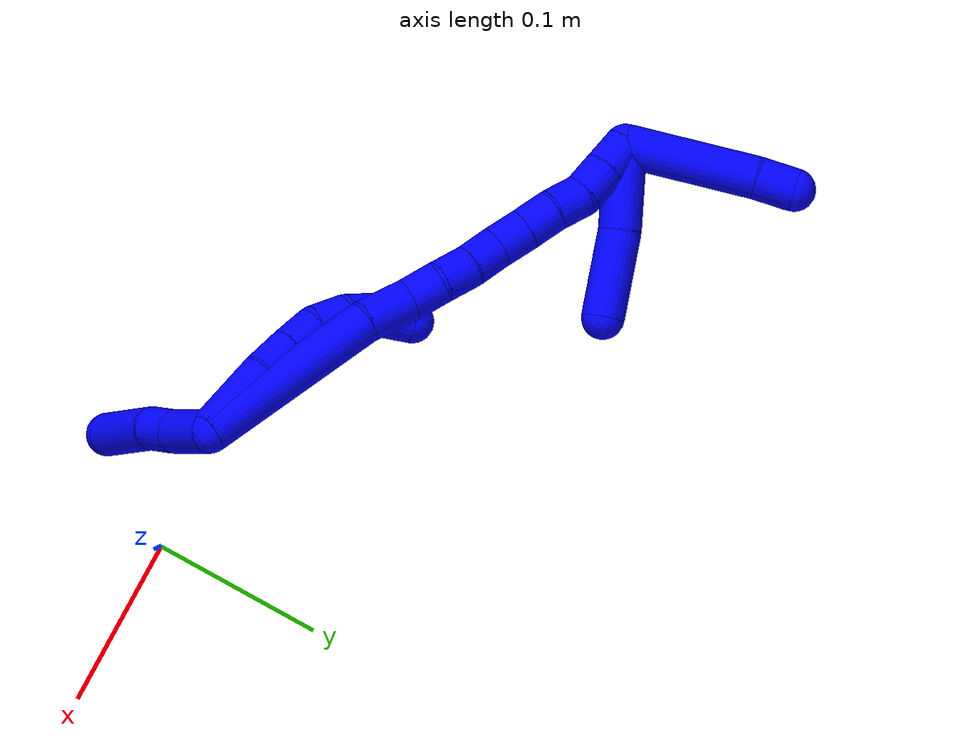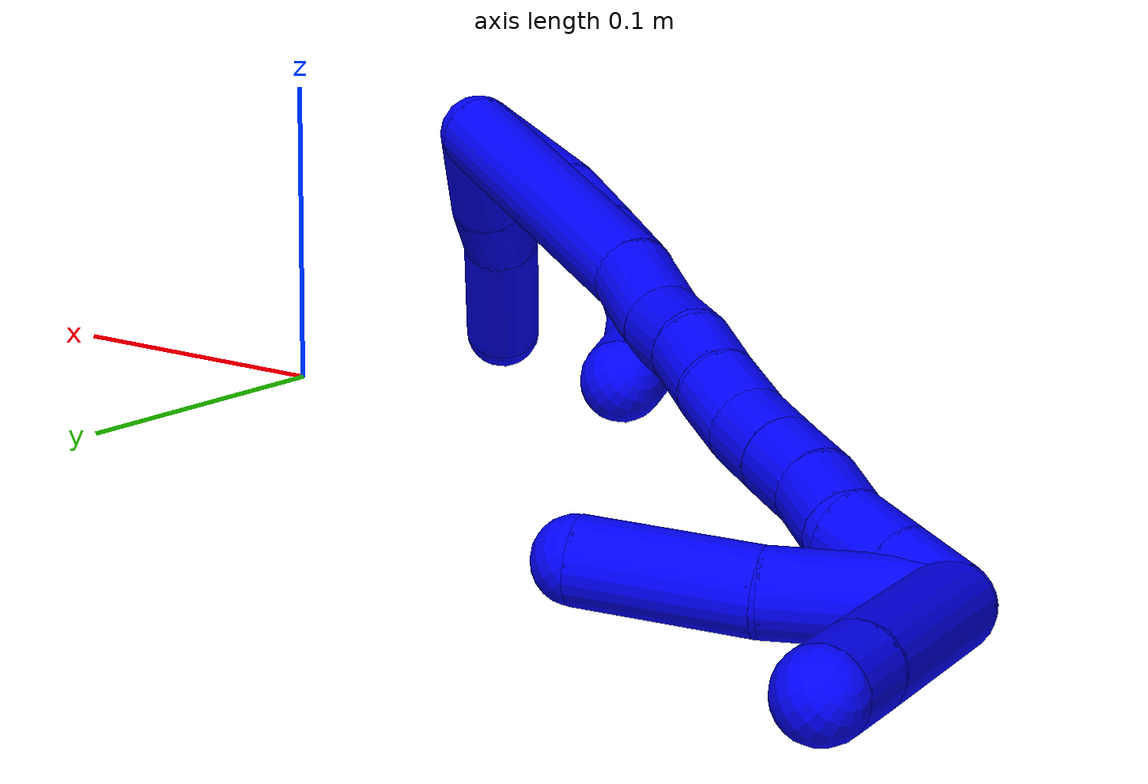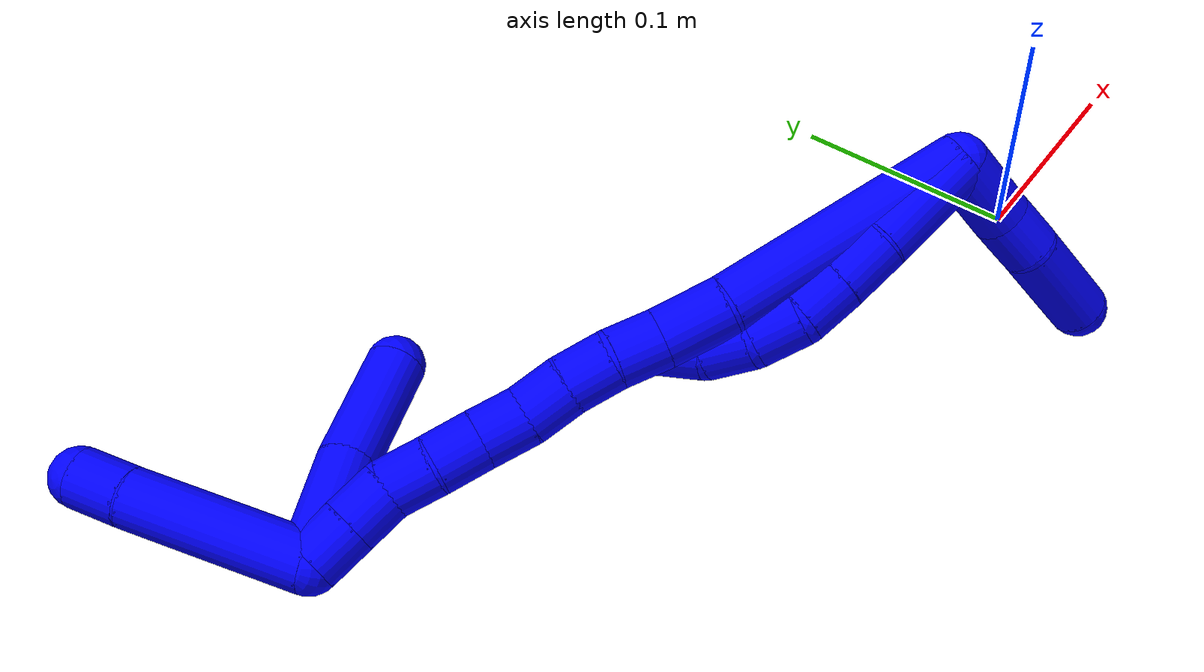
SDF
<sdf version="1.7">
 <world name="default">
  <model name="photoneo_s_sensor">
   <static>1</static>
   <pose>0 0 2 1.57079 1.57079 3.14159</pose>
   <link name="link">
    <inertial><mass>0.1</mass></inertial>
    <sensor name="sensor" type="depth">
     <update_rate>30</update_rate>
     <camera>
      <horizontal_fov>1.22</horizontal_fov>
      <image><width>1920</width><height>1200</height><format>B8G8R8</format></image>
      <clip><near>0.1</near><far>4</far></clip>
      <depth_camera><output>points</output></depth_camera>
     </camera>
     <plugin name="camera_plugin" filename="libgazebo_ros_depth_camera.so">
      <baseline>0.2</baseline>
      <alwaysOn>1</alwaysOn>
      <updateRate>0.0</updateRate>
      <cameraName>camera_ir</cameraName>
      <imageTopicName>/camera/color/image_raw</imageTopicName>
      <cameraInfoTopicName>/camera/color/camera_info</cameraInfoTopicName>
      <depthImageTopicName>/camera/depth/image_raw</depthImageTopicName>
      <depthImageCameraInfoTopicName>/camera/depth/camera_info</depthImageCameraInfoTopicName>
      <pointCloudTopicName>/camera/depth/points</pointCloudTopicName>
      <frameName>fr_optical</frameName>
      <pointCloudCutoff>0.1</pointCloudCutoff>
      <pointCloudCutoffMax>2.0</pointCloudCutoffMax>
      <distortionK1>0</distortionK1>
      <distortionK2>0</distortionK2>
      <distortionK3>0</distortionK3>
      <distortionT1>0</distortionT1>
      <distortionT2>0</distortionT2>
      <CxPrime>0</CxPrime>
      <Cx>0</Cx>
      <Cy>0</Cy>
      <focalLength>0</focalLength>
      <hackBaseline>0</hackBaseline>
     </plugin>
    </sensor>
   </link>
  </model>
  <model name="bin">
   <static>1</static>
   <link name="bottom">
    <collision name="collision-bottom">
     <pose>0 0 -0.01 0 -0 0</pose>
     <geometry><box><size>0.8 0.6 0.02</size></box></geometry>
     <surface>
      <friction><ode><mu>100</mu><mu2>100</mu2></ode></friction>
      <contact><collide_bitmask>65535</collide_bitmask></contact>
     </surface>
    </collision>
   </link>
   <link name="west_wall">
    <collision name="collision-west_wall">
     <pose>-0.41 0 0.1 0 -0 0</pose>
     <geometry><box><size>0.02 0.6 0.2</size></box></geometry>
     <surface>
      <friction><ode><mu>100</mu><mu2>100</mu2></ode></friction>
      <contact><collide_bitmask>65535</collide_bitmask></contact>
     </surface>
    </collision>
   </link>
   <link name="east_wall">
    <collision name="collision-east_wall">
     <pose>0.41 0 0.1 0 -0 0</pose>
     <geometry><box><size>0.02 0.6 0.2</size></box></geometry>
     <surface>
      <friction><ode><mu>100</mu><mu2>100</mu2></ode></friction>
      <contact><collide_bitmask>65535</collide_bitmask></contact>
     </surface>
    </collision>
   </link>
   <link name="south_wall">
    <collision name="collision-south_wall">
     <pose>0 -0.31 0.1 0 -0 0</pose>
     <geometry><box><size>0.8 0.02 0.2</size></box></geometry>
     <surface>
      <friction><ode><mu>100</mu><mu2>100</mu2></ode></friction>
      <contact><collide_bitmask>65535</collide_bitmask></contact>
     </surface>
    </collision>
   </link>
   <link name="north_wall">
    <collision name="collision-north_wall">
     <pose>0 0.31 0.1 0 -0 0</pose>
     <geometry><box><size>0.8 0.02 0.2</size></box></geometry>
     <surface>
      <friction><ode><mu>100</mu><mu2>100</mu2></ode></friction>
      <contact><collide_bitmask>65535</collide_bitmask></contact>
     </surface>
    </collision>
   </link>
  </model>
  <model name="1">
   <static>0</static>
   <link name="1">
    <collision name="collision-cylinder-e_1_2_8">
     <pose>-0.018232 -0.002934 0.013952 0.207279 -0.90714 -0.101318</pose>
     <geometry><cylinder><radius>0.0125</radius><length>0.046289</length></cylinder></geometry>
     <surface>
      <friction><ode><mu>1.16</mu><mu2>1.16</mu2><slip1>0</slip1><slip2>0</slip2></ode></friction>
      <contact><ode><kp>1e+06</kp><kd>1</kd><max_vel>0</max_vel><min_depth>0.001</min_depth></ode></contact>
     </surface>
    </collision>
    <visual name="visual-cylinder-e_1_2_8">
     <pose>-0.018232 -0.002934 0.013952 0.207279 -0.90714 -0.101318</pose>
     <geometry><cylinder><radius>0.0125</radius><length>0.046289</length></cylinder></geometry>
     <material><ambient>0 0 1 1</ambient></material>
    </visual>
    <collision name="collision-cylinder-e_2_8_9">
     <pose>-0.046241 -0.006468 0.033808 0.101266 -1.02529 -0.057029</pose>
     <geometry><cylinder><radius>0.0125</radius><length>0.022875</length></cylinder></geometry>
     <surface>
      <friction><ode><mu>1.16</mu><mu2>1.16</mu2><slip1>0</slip1><slip2>0</slip2></ode></friction>
      <contact><ode><kp>1e+06</kp><kd>1</kd><max_vel>0</max_vel><min_depth>0.001</min_depth></ode></contact>
     </surface>
    </collision>
    <visual name="visual-cylinder-e_2_8_9">
     <pose>-0.046241 -0.006468 0.033808 0.101266 -1.02529 -0.057029</pose>
     <geometry><cylinder><radius>0.0125</radius><length>0.022875</length></cylinder></geometry>
     <material><ambient>0 0 1 1</ambient></material>
    </visual>
    <collision name="collision-cylinder-e_3_9_10">
     <pose>-0.064646 -0.007192 0.045185 0.022611 -1.00534 -0.012431</pose>
     <geometry><cylinder><radius>0.0125</radius><length>0.020435</length></cylinder></geometry>
     <surface>
      <friction><ode><mu>1.16</mu><mu2>1.16</mu2><slip1>0</slip1><slip2>0</slip2></ode></friction>
      <contact><ode><kp>1e+06</kp><kd>1</kd><max_vel>0</max_vel><min_depth>0.001</min_depth></ode></contact>
     </surface>
    </collision>
    <visual name="visual-cylinder-e_3_9_10">
     <pose>-0.064646 -0.007192 0.045185 0.022611 -1.00534 -0.012431</pose>
     <geometry><cylinder><radius>0.0125</radius><length>0.020435</length></cylinder></geometry>
     <material><ambient>0 0 1 1</ambient></material>
    </visual>
    <collision name="collision-cylinder-e_4_10_11">
     <pose>-0.081702 -0.004158 0.055416 -0.585871 -0.975368 0.317273</pose>
     <geometry><cylinder><radius>0.0125</radius><length>0.020364</length></cylinder></geometry>
     <surface>
      <friction><ode><mu>1.16</mu><mu2>1.16</mu2><slip1>0</slip1><slip2>0</slip2></ode></friction>
      <contact><ode><kp>1e+06</kp><kd>1</kd><max_vel>0</max_vel><min_depth>0.001</min_depth></ode></contact>
     </surface>
    </collision>
    <visual name="visual-cylinder-e_4_10_11">
     <pose>-0.081702 -0.004158 0.055416 -0.585871 -0.975368 0.317273</pose>
     <geometry><cylinder><radius>0.0125</radius><length>0.020364</length></cylinder></geometry>
     <material><ambient>0 0 1 1</ambient></material>
    </visual>
    <collision name="collision-cylinder-e_5_11_12">
     <pose>-0.097752 0.00455 0.063525 -1.02764 -0.865834 0.510297</pose>
     <geometry><cylinder><radius>0.0125</radius><length>0.020009</length></cylinder></geometry>
     <surface>
      <friction><ode><mu>1.16</mu><mu2>1.16</mu2><slip1>0</slip1><slip2>0</slip2></ode></friction>
      <contact><ode><kp>1e+06</kp><kd>1</kd><max_vel>0</max_vel><min_depth>0.001</min_depth></ode></contact>
     </surface>
    </collision>
    <visual name="visual-cylinder-e_5_11_12">
     <pose>-0.097752 0.00455 0.063525 -1.02764 -0.865834 0.510297</pose>
     <geometry><cylinder><radius>0.0125</radius><length>0.020009</length></cylinder></geometry>
     <material><ambient>0 0 1 1</ambient></material>
    </visual>
    <collision name="collision-cylinder-e_6_12_6">
     <pose>-0.110598 0.017792 0.070591 -1.12086 -0.548991 0.349829</pose>
     <geometry><cylinder><radius>0.0125</radius><length>0.020029</length></cylinder></geometry>
     <surface>
      <friction><ode><mu>1.16</mu><mu2>1.16</mu2><slip1>0</slip1><slip2>0</slip2></ode></friction>
      <contact><ode><kp>1e+06</kp><kd>1</kd><max_vel>0</max_vel><min_depth>0.001</min_depth></ode></contact>
     </surface>
    </collision>
    <visual name="visual-cylinder-e_6_12_6">
     <pose>-0.110598 0.017792 0.070591 -1.12086 -0.548991 0.349829</pose>
     <geometry><cylinder><radius>0.0125</radius><length>0.020029</length></cylinder></geometry>
     <material><ambient>0 0 1 1</ambient></material>
    </visual>
    <collision name="collision-cylinder-e_1_2_13">
     <pose>-0.006488 -0.007609 -0.013626 2.63233 -0.393966 -1.30828</pose>
     <geometry><cylinder><radius>0.0125</radius><length>0.033803</length></cylinder></geometry>
     <surface>
      <friction><ode><mu>1.16</mu><mu2>1.16</mu2><slip1>0</slip1><slip2>0</slip2></ode></friction>
      <contact><ode><kp>1e+06</kp><kd>1</kd><max_vel>0</max_vel><min_depth>0.001</min_depth></ode></contact>
     </surface>
    </collision>
    <visual name="visual-cylinder-e_1_2_13">
     <pose>-0.006488 -0.007609 -0.013626 2.63233 -0.393966 -1.30828</pose>
     <geometry><cylinder><radius>0.0125</radius><length>0.033803</length></cylinder></geometry>
     <material><ambient>0 0 1 1</ambient></material>
    </visual>
    <collision name="collision-cylinder-e_2_13_14">
     <pose>-0.016538 -0.021013 -0.035154 2.50878 -0.348741 -0.987238</pose>
     <geometry><cylinder><radius>0.0125</radius><length>0.020853</length></cylinder></geometry>
     <surface>
      <friction><ode><mu>1.16</mu><mu2>1.16</mu2><slip1>0</slip1><slip2>0</slip2></ode></friction>
      <contact><ode><kp>1e+06</kp><kd>1</kd><max_vel>0</max_vel><min_depth>0.001</min_depth></ode></contact>
     </surface>
    </collision>
    <visual name="visual-cylinder-e_2_13_14">
     <pose>-0.016538 -0.021013 -0.035154 2.50878 -0.348741 -0.987238</pose>
     <geometry><cylinder><radius>0.0125</radius><length>0.020853</length></cylinder></geometry>
     <material><ambient>0 0 1 1</ambient></material>
    </visual>
    <collision name="collision-cylinder-e_3_14_5">
     <pose>-0.028556 -0.035525 -0.062201 2.71435 -0.382137 -1.45636</pose>
     <geometry><cylinder><radius>0.0125</radius><length>0.045345</length></cylinder></geometry>
     <surface>
      <friction><ode><mu>1.16</mu><mu2>1.16</mu2><slip1>0</slip1><slip2>0</slip2></ode></friction>
      <contact><ode><kp>1e+06</kp><kd>1</kd><max_vel>0</max_vel><min_depth>0.001</min_depth></ode></contact>
     </surface>
    </collision>
    <visual name="visual-cylinder-e_3_14_5">
     <pose>-0.028556 -0.035525 -0.062201 2.71435 -0.382137 -1.45636</pose>
     <geometry><cylinder><radius>0.0125</radius><length>0.045345</length></cylinder></geometry>
     <material><ambient>0 0 1 1</ambient></material>
    </visual>
    <collision name="collision-cylinder-e_1_2_15">
     <pose>-0.041131 0.004848 0.03624 -0.132986 -0.844125 0.059787</pose>
     <geometry><cylinder><radius>0.0125</radius><length>0.110066</length></cylinder></geometry>
     <surface>
      <friction><ode><mu>1.16</mu><mu2>1.16</mu2><slip1>0</slip1><slip2>0</slip2></ode></friction>
      <contact><ode><kp>1e+06</kp><kd>1</kd><max_vel>0</max_vel><min_depth>0.001</min_depth></ode></contact>
     </surface>
    </collision>
    <visual name="visual-cylinder-e_1_2_15">
     <pose>-0.041131 0.004848 0.03624 -0.132986 -0.844125 0.059787</pose>
     <geometry><cylinder><radius>0.0125</radius><length>0.110066</length></cylinder></geometry>
     <material><ambient>0 0 1 1</ambient></material>
    </visual>
    <collision name="collision-cylinder-e_2_15_16">
     <pose>-0.093651 0.013058 0.080846 -0.38213 -0.901186 0.186609</pose>
     <geometry><cylinder><radius>0.0125</radius><length>0.02905</length></cylinder></geometry>
     <surface>
      <friction><ode><mu>1.16</mu><mu2>1.16</mu2><slip1>0</slip1><slip2>0</slip2></ode></friction>
      <contact><ode><kp>1e+06</kp><kd>1</kd><max_vel>0</max_vel><min_depth>0.001</min_depth></ode></contact>
     </surface>
    </collision>
    <visual name="visual-cylinder-e_2_15_16">
     <pose>-0.093651 0.013058 0.080846 -0.38213 -0.901186 0.186609</pose>
     <geometry><cylinder><radius>0.0125</radius><length>0.02905</length></cylinder></geometry>
     <material><ambient>0 0 1 1</ambient></material>
    </visual>
    <collision name="collision-cylinder-e_3_16_17">
     <pose>-0.111972 0.018387 0.096661 -0.258173 -0.732656 0.099518</pose>
     <geometry><cylinder><radius>0.0125</radius><length>0.02073</length></cylinder></geometry>
     <surface>
      <friction><ode><mu>1.16</mu><mu2>1.16</mu2><slip1>0</slip1><slip2>0</slip2></ode></friction>
      <contact><ode><kp>1e+06</kp><kd>1</kd><max_vel>0</max_vel><min_depth>0.001</min_depth></ode></contact>
     </surface>
    </collision>
    <visual name="visual-cylinder-e_3_16_17">
     <pose>-0.111972 0.018387 0.096661 -0.258173 -0.732656 0.099518</pose>
     <geometry><cylinder><radius>0.0125</radius><length>0.02073</length></cylinder></geometry>
     <material><ambient>0 0 1 1</ambient></material>
    </visual>
    <collision name="collision-cylinder-e_4_17_18">
     <pose>-0.126953 0.022292 0.109854 -0.32542 -0.925365 0.163401</pose>
     <geometry><cylinder><radius>0.0125</radius><length>0.020151</length></cylinder></geometry>
     <surface>
      <friction><ode><mu>1.16</mu><mu2>1.16</mu2><slip1>0</slip1><slip2>0</slip2></ode></friction>
      <contact><ode><kp>1e+06</kp><kd>1</kd><max_vel>0</max_vel><min_depth>0.001</min_depth></ode></contact>
     </surface>
    </collision>
    <visual name="visual-cylinder-e_4_17_18">
     <pose>-0.126953 0.022292 0.109854 -0.32542 -0.925365 0.163401</pose>
     <geometry><cylinder><radius>0.0125</radius><length>0.020151</length></cylinder></geometry>
     <material><ambient>0 0 1 1</ambient></material>
    </visual>
    <collision name="collision-cylinder-e_5_18_19">
     <pose>-0.143365 0.025007 0.121026 -0.142209 -0.99026 0.076884</pose>
     <geometry><cylinder><radius>0.0125</radius><length>0.020002</length></cylinder></geometry>
     <surface>
      <friction><ode><mu>1.16</mu><mu2>1.16</mu2><slip1>0</slip1><slip2>0</slip2></ode></friction>
      <contact><ode><kp>1e+06</kp><kd>1</kd><max_vel>0</max_vel><min_depth>0.001</min_depth></ode></contact>
     </surface>
    </collision>
    <visual name="visual-cylinder-e_5_18_19">
     <pose>-0.143365 0.025007 0.121026 -0.142209 -0.99026 0.076884</pose>
     <geometry><cylinder><radius>0.0125</radius><length>0.020002</length></cylinder></geometry>
     <material><ambient>0 0 1 1</ambient></material>
    </visual>
    <collision name="collision-cylinder-e_6_19_20">
     <pose>-0.158896 0.027196 0.133284 -0.203794 -0.799329 0.086328</pose>
     <geometry><cylinder><radius>0.0125</radius><length>0.020001</length></cylinder></geometry>
     <surface>
      <friction><ode><mu>1.16</mu><mu2>1.16</mu2><slip1>0</slip1><slip2>0</slip2></ode></friction>
      <contact><ode><kp>1e+06</kp><kd>1</kd><max_vel>0</max_vel><min_depth>0.001</min_depth></ode></contact>
     </surface>
    </collision>
    <visual name="visual-cylinder-e_6_19_20">
     <pose>-0.158896 0.027196 0.133284 -0.203794 -0.799329 0.086328</pose>
     <geometry><cylinder><radius>0.0125</radius><length>0.020001</length></cylinder></geometry>
     <material><ambient>0 0 1 1</ambient></material>
    </visual>
    <collision name="collision-cylinder-e_7_20_21">
     <pose>-0.173267 0.029738 0.146957 -0.163797 -0.804044 0.069771</pose>
     <geometry><cylinder><radius>0.0125</radius><length>0.02</length></cylinder></geometry>
     <surface>
      <friction><ode><mu>1.16</mu><mu2>1.16</mu2><slip1>0</slip1><slip2>0</slip2></ode></friction>
      <contact><ode><kp>1e+06</kp><kd>1</kd><max_vel>0</max_vel><min_depth>0.001</min_depth></ode></contact>
     </surface>
    </collision>
    <visual name="visual-cylinder-e_7_20_21">
     <pose>-0.173267 0.029738 0.146957 -0.163797 -0.804044 0.069771</pose>
     <geometry><cylinder><radius>0.0125</radius><length>0.02</length></cylinder></geometry>
     <material><ambient>0 0 1 1</ambient></material>
    </visual>
    <collision name="collision-cylinder-e_8_21_22">
     <pose>-0.188247 0.032944 0.159735 -0.336383 -0.891229 0.161854</pose>
     <geometry><cylinder><radius>0.0125</radius><length>0.02</length></cylinder></geometry>
     <surface>
      <friction><ode><mu>1.16</mu><mu2>1.16</mu2><slip1>0</slip1><slip2>0</slip2></ode></friction>
      <contact><ode><kp>1e+06</kp><kd>1</kd><max_vel>0</max_vel><min_depth>0.001</min_depth></ode></contact>
     </surface>
    </collision>
    <visual name="visual-cylinder-e_8_21_22">
     <pose>-0.188247 0.032944 0.159735 -0.336383 -0.891229 0.161854</pose>
     <geometry><cylinder><radius>0.0125</radius><length>0.02</length></cylinder></geometry>
     <material><ambient>0 0 1 1</ambient></material>
    </visual>
    <collision name="collision-cylinder-e_9_22_23">
     <pose>-0.203751 0.033633 0.171864 0.219856 -0.882837 -0.104211</pose>
     <geometry><cylinder><radius>0.0125</radius><length>0.02</length></cylinder></geometry>
     <surface>
      <friction><ode><mu>1.16</mu><mu2>1.16</mu2><slip1>0</slip1><slip2>0</slip2></ode></friction>
      <contact><ode><kp>1e+06</kp><kd>1</kd><max_vel>0</max_vel><min_depth>0.001</min_depth></ode></contact>
     </surface>
    </collision>
    <visual name="visual-cylinder-e_9_22_23">
     <pose>-0.203751 0.033633 0.171864 0.219856 -0.882837 -0.104211</pose>
     <geometry><cylinder><radius>0.0125</radius><length>0.02</length></cylinder></geometry>
     <material><ambient>0 0 1 1</ambient></material>
    </visual>
    <collision name="collision-cylinder-e_10_23_1">
     <pose>-0.219188 0.030858 0.184274 0.220135 -0.880608 -0.104044</pose>
     <geometry><cylinder><radius>0.0125</radius><length>0.02</length></cylinder></geometry>
     <surface>
      <friction><ode><mu>1.16</mu><mu2>1.16</mu2><slip1>0</slip1><slip2>0</slip2></ode></friction>
      <contact><ode><kp>1e+06</kp><kd>1</kd><max_vel>0</max_vel><min_depth>0.001</min_depth></ode></contact>
     </surface>
    </collision>
    <visual name="visual-cylinder-e_10_23_1">
     <pose>-0.219188 0.030858 0.184274 0.220135 -0.880608 -0.104044</pose>
     <geometry><cylinder><radius>0.0125</radius><length>0.02</length></cylinder></geometry>
     <material><ambient>0 0 1 1</ambient></material>
    </visual>
    <collision name="collision-cylinder-e_1_1_24">
     <pose>-0.238278 0.061445 0.208951 -1.04715 -0.298927 0.173437</pose>
     <geometry><cylinder><radius>0.0125</radius><length>0.077276</length></cylinder></geometry>
     <surface>
      <friction><ode><mu>1.16</mu><mu2>1.16</mu2><slip1>0</slip1><slip2>0</slip2></ode></friction>
      <contact><ode><kp>1e+06</kp><kd>1</kd><max_vel>0</max_vel><min_depth>0.001</min_depth></ode></contact>
     </surface>
    </collision>
    <visual name="visual-cylinder-e_1_1_24">
     <pose>-0.238278 0.061445 0.208951 -1.04715 -0.298927 0.173437</pose>
     <geometry><cylinder><radius>0.0125</radius><length>0.077276</length></cylinder></geometry>
     <material><ambient>0 0 1 1</ambient></material>
    </visual>
    <collision name="collision-cylinder-e_2_24_4">
     <pose>-0.253187 0.10322 0.231955 -1.13683 -0.315973 0.202821</pose>
     <geometry><cylinder><radius>0.0125</radius><length>0.022724</length></cylinder></geometry>
     <surface>
      <friction><ode><mu>1.16</mu><mu2>1.16</mu2><slip1>0</slip1><slip2>0</slip2></ode></friction>
      <contact><ode><kp>1e+06</kp><kd>1</kd><max_vel>0</max_vel><min_depth>0.001</min_depth></ode></contact>
     </surface>
    </collision>
    <visual name="visual-cylinder-e_2_24_4">
     <pose>-0.253187 0.10322 0.231955 -1.13683 -0.315973 0.202821</pose>
     <geometry><cylinder><radius>0.0125</radius><length>0.022724</length></cylinder></geometry>
     <material><ambient>0 0 1 1</ambient></material>
    </visual>
    <collision name="collision-cylinder-e_1_1_25">
     <pose>-0.218035 0.04652 0.175432 -2.29408 0.371566 -0.789573</pose>
     <geometry><cylinder><radius>0.0125</radius><length>0.048826</length></cylinder></geometry>
     <surface>
      <friction><ode><mu>1.16</mu><mu2>1.16</mu2><slip1>0</slip1><slip2>0</slip2></ode></friction>
      <contact><ode><kp>1e+06</kp><kd>1</kd><max_vel>0</max_vel><min_depth>0.001</min_depth></ode></contact>
     </surface>
    </collision>
    <visual name="visual-cylinder-e_1_1_25">
     <pose>-0.218035 0.04652 0.175432 -2.29408 0.371566 -0.789573</pose>
     <geometry><cylinder><radius>0.0125</radius><length>0.048826</length></cylinder></geometry>
     <material><ambient>0 0 1 1</ambient></material>
    </visual>
    <collision name="collision-cylinder-e_2_25_3">
     <pose>-0.197266 0.079094 0.143883 -2.38655 0.483958 -1.11349</pose>
     <geometry><cylinder><radius>0.0125</radius><length>0.051174</length></cylinder></geometry>
     <surface>
      <friction><ode><mu>1.16</mu><mu2>1.16</mu2><slip1>0</slip1><slip2>0</slip2></ode></friction>
      <contact><ode><kp>1e+06</kp><kd>1</kd><max_vel>0</max_vel><min_depth>0.001</min_depth></ode></contact>
     </surface>
    </collision>
    <visual name="visual-cylinder-e_2_25_3">
     <pose>-0.197266 0.079094 0.143883 -2.38655 0.483958 -1.11349</pose>
     <geometry><cylinder><radius>0.0125</radius><length>0.051174</length></cylinder></geometry>
     <material><ambient>0 0 1 1</ambient></material>
    </visual>
    <collision name="collision-sphere-3">
     <pose>-0.185361 0.094615 0.127389 0 -0 0</pose>
     <geometry><sphere><radius>0.0125</radius></sphere></geometry>
     <surface>
      <friction><ode><mu>1.16</mu><mu2>1.16</mu2><slip1>0</slip1><slip2>0</slip2></ode></friction>
      <contact><ode><kp>1e+06</kp><kd>1</kd><max_vel>0</max_vel><min_depth>0.001</min_depth></ode></contact>
     </surface>
    </collision>
    <visual name="visual-sphere-3">
     <pose>-0.185361 0.094615 0.127389 0 -0 0</pose>
     <geometry><sphere><radius>0.0125</radius></sphere></geometry>
     <material><ambient>0 0 1 1</ambient></material>
    </visual>
    <collision name="collision-sphere-25">
     <pose>-0.209172 0.063572 0.160377 0 -0 0</pose>
     <geometry><sphere><radius>0.0125</radius></sphere></geometry>
     <surface>
      <friction><ode><mu>1.16</mu><mu2>1.16</mu2><slip1>0</slip1><slip2>0</slip2></ode></friction>
      <contact><ode><kp>1e+06</kp><kd>1</kd><max_vel>0</max_vel><min_depth>0.001</min_depth></ode></contact>
     </surface>
    </collision>
    <visual name="visual-sphere-25">
     <pose>-0.209172 0.063572 0.160377 0 -0 0</pose>
     <geometry><sphere><radius>0.0125</radius></sphere></geometry>
     <material><ambient>0 0 1 1</ambient></material>
    </visual>
    <collision name="collision-sphere-4">
     <pose>-0.256718 0.113018 0.236496 0 -0 0</pose>
     <geometry><sphere><radius>0.0125</radius></sphere></geometry>
     <surface>
      <friction><ode><mu>1.16</mu><mu2>1.16</mu2><slip1>0</slip1><slip2>0</slip2></ode></friction>
      <contact><ode><kp>1e+06</kp><kd>1</kd><max_vel>0</max_vel><min_depth>0.001</min_depth></ode></contact>
     </surface>
    </collision>
    <visual name="visual-sphere-4">
     <pose>-0.256718 0.113018 0.236496 0 -0 0</pose>
     <geometry><sphere><radius>0.0125</radius></sphere></geometry>
     <material><ambient>0 0 1 1</ambient></material>
    </visual>
    <collision name="collision-sphere-24">
     <pose>-0.249656 0.093421 0.227414 0 -0 0</pose>
     <geometry><sphere><radius>0.0125</radius></sphere></geometry>
     <surface>
      <friction><ode><mu>1.16</mu><mu2>1.16</mu2><slip1>0</slip1><slip2>0</slip2></ode></friction>
      <contact><ode><kp>1e+06</kp><kd>1</kd><max_vel>0</max_vel><min_depth>0.001</min_depth></ode></contact>
     </surface>
    </collision>
    <visual name="visual-sphere-24">
     <pose>-0.249656 0.093421 0.227414 0 -0 0</pose>
     <geometry><sphere><radius>0.0125</radius></sphere></geometry>
     <material><ambient>0 0 1 1</ambient></material>
    </visual>
    <collision name="collision-sphere-1">
     <pose>-0.226899 0.029468 0.190487 0 -0 0</pose>
     <geometry><sphere><radius>0.0125</radius></sphere></geometry>
     <surface>
      <friction><ode><mu>1.16</mu><mu2>1.16</mu2><slip1>0</slip1><slip2>0</slip2></ode></friction>
      <contact><ode><kp>1e+06</kp><kd>1</kd><max_vel>0</max_vel><min_depth>0.001</min_depth></ode></contact>
     </surface>
    </collision>
    <visual name="visual-sphere-1">
     <pose>-0.226899 0.029468 0.190487 0 -0 0</pose>
     <geometry><sphere><radius>0.0125</radius></sphere></geometry>
     <material><ambient>0 0 1 1</ambient></material>
    </visual>
    <collision name="collision-sphere-23">
     <pose>-0.211477 0.032249 0.17806 0 -0 0</pose>
     <geometry><sphere><radius>0.0125</radius></sphere></geometry>
     <surface>
      <friction><ode><mu>1.16</mu><mu2>1.16</mu2><slip1>0</slip1><slip2>0</slip2></ode></friction>
      <contact><ode><kp>1e+06</kp><kd>1</kd><max_vel>0</max_vel><min_depth>0.001</min_depth></ode></contact>
     </surface>
    </collision>
    <visual name="visual-sphere-23">
     <pose>-0.211477 0.032249 0.17806 0 -0 0</pose>
     <geometry><sphere><radius>0.0125</radius></sphere></geometry>
     <material><ambient>0 0 1 1</ambient></material>
    </visual>
    <collision name="collision-sphere-22">
     <pose>-0.196026 0.035018 0.165667 0 -0 0</pose>
     <geometry><sphere><radius>0.0125</radius></sphere></geometry>
     <surface>
      <friction><ode><mu>1.16</mu><mu2>1.16</mu2><slip1>0</slip1><slip2>0</slip2></ode></friction>
      <contact><ode><kp>1e+06</kp><kd>1</kd><max_vel>0</max_vel><min_depth>0.001</min_depth></ode></contact>
     </surface>
    </collision>
    <visual name="visual-sphere-22">
     <pose>-0.196026 0.035018 0.165667 0 -0 0</pose>
     <geometry><sphere><radius>0.0125</radius></sphere></geometry>
     <material><ambient>0 0 1 1</ambient></material>
    </visual>
    <collision name="collision-sphere-21">
     <pose>-0.180469 0.030869 0.153802 0 -0 0</pose>
     <geometry><sphere><radius>0.0125</radius></sphere></geometry>
     <surface>
      <friction><ode><mu>1.16</mu><mu2>1.16</mu2><slip1>0</slip1><slip2>0</slip2></ode></friction>
      <contact><ode><kp>1e+06</kp><kd>1</kd><max_vel>0</max_vel><min_depth>0.001</min_depth></ode></contact>
     </surface>
    </collision>
    <visual name="visual-sphere-21">
     <pose>-0.180469 0.030869 0.153802 0 -0 0</pose>
     <geometry><sphere><radius>0.0125</radius></sphere></geometry>
     <material><ambient>0 0 1 1</ambient></material>
    </visual>
    <collision name="collision-sphere-12">
     <pose>-0.105372 0.0101 0.066876 0 -0 0</pose>
     <geometry><sphere><radius>0.0125</radius></sphere></geometry>
     <surface>
      <friction><ode><mu>1.16</mu><mu2>1.16</mu2><slip1>0</slip1><slip2>0</slip2></ode></friction>
      <contact><ode><kp>1e+06</kp><kd>1</kd><max_vel>0</max_vel><min_depth>0.001</min_depth></ode></contact>
     </surface>
    </collision>
    <visual name="visual-sphere-12">
     <pose>-0.105372 0.0101 0.066876 0 -0 0</pose>
     <geometry><sphere><radius>0.0125</radius></sphere></geometry>
     <material><ambient>0 0 1 1</ambient></material>
    </visual>
    <collision name="collision-sphere-11">
     <pose>-0.090132 -0.001 0.060174 0 -0 0</pose>
     <geometry><sphere><radius>0.0125</radius></sphere></geometry>
     <surface>
      <friction><ode><mu>1.16</mu><mu2>1.16</mu2><slip1>0</slip1><slip2>0</slip2></ode></friction>
      <contact><ode><kp>1e+06</kp><kd>1</kd><max_vel>0</max_vel><min_depth>0.001</min_depth></ode></contact>
     </surface>
    </collision>
    <visual name="visual-sphere-11">
     <pose>-0.090132 -0.001 0.060174 0 -0 0</pose>
     <geometry><sphere><radius>0.0125</radius></sphere></geometry>
     <material><ambient>0 0 1 1</ambient></material>
    </visual>
    <collision name="collision-sphere-10">
     <pose>-0.073273 -0.007316 0.050658 0 -0 0</pose>
     <geometry><sphere><radius>0.0125</radius></sphere></geometry>
     <surface>
      <friction><ode><mu>1.16</mu><mu2>1.16</mu2><slip1>0</slip1><slip2>0</slip2></ode></friction>
      <contact><ode><kp>1e+06</kp><kd>1</kd><max_vel>0</max_vel><min_depth>0.001</min_depth></ode></contact>
     </surface>
    </collision>
    <visual name="visual-sphere-10">
     <pose>-0.073273 -0.007316 0.050658 0 -0 0</pose>
     <geometry><sphere><radius>0.0125</radius></sphere></geometry>
     <material><ambient>0 0 1 1</ambient></material>
    </visual>
    <collision name="collision-sphere-9">
     <pose>-0.056019 -0.007068 0.039712 0 -0 0</pose>
     <geometry><sphere><radius>0.0125</radius></sphere></geometry>
     <surface>
      <friction><ode><mu>1.16</mu><mu2>1.16</mu2><slip1>0</slip1><slip2>0</slip2></ode></friction>
      <contact><ode><kp>1e+06</kp><kd>1</kd><max_vel>0</max_vel><min_depth>0.001</min_depth></ode></contact>
     </surface>
    </collision>
    <visual name="visual-sphere-9">
     <pose>-0.056019 -0.007068 0.039712 0 -0 0</pose>
     <geometry><sphere><radius>0.0125</radius></sphere></geometry>
     <material><ambient>0 0 1 1</ambient></material>
    </visual>
    <collision name="collision-sphere-2">
     <geometry><sphere><radius>0.0125</radius></sphere></geometry>
     <surface>
      <friction><ode><mu>1.16</mu><mu2>1.16</mu2><slip1>0</slip1><slip2>0</slip2></ode></friction>
      <contact><ode><kp>1e+06</kp><kd>1</kd><max_vel>0</max_vel><min_depth>0.001</min_depth></ode></contact>
     </surface>
    </collision>
    <visual name="visual-sphere-2">
     <geometry><sphere><radius>0.0125</radius></sphere></geometry>
     <material><ambient>0 0 1 1</ambient></material>
    </visual>
    <collision name="collision-sphere-19">
     <pose>-0.151727 0.025785 0.126456 0 -0 0</pose>
     <geometry><sphere><radius>0.0125</radius></sphere></geometry>
     <surface>
      <friction><ode><mu>1.16</mu><mu2>1.16</mu2><slip1>0</slip1><slip2>0</slip2></ode></friction>
      <contact><ode><kp>1e+06</kp><kd>1</kd><max_vel>0</max_vel><min_depth>0.001</min_depth></ode></contact>
     </surface>
    </collision>
    <visual name="visual-sphere-19">
     <pose>-0.151727 0.025785 0.126456 0 -0 0</pose>
     <geometry><sphere><radius>0.0125</radius></sphere></geometry>
     <material><ambient>0 0 1 1</ambient></material>
    </visual>
    <collision name="collision-sphere-8">
     <pose>-0.036464 -0.005868 0.027904 0 -0 0</pose>
     <geometry><sphere><radius>0.0125</radius></sphere></geometry>
     <surface>
      <friction><ode><mu>1.16</mu><mu2>1.16</mu2><slip1>0</slip1><slip2>0</slip2></ode></friction>
      <contact><ode><kp>1e+06</kp><kd>1</kd><max_vel>0</max_vel><min_depth>0.001</min_depth></ode></contact>
     </surface>
    </collision>
    <visual name="visual-sphere-8">
     <pose>-0.036464 -0.005868 0.027904 0 -0 0</pose>
     <geometry><sphere><radius>0.0125</radius></sphere></geometry>
     <material><ambient>0 0 1 1</ambient></material>
    </visual>
    <collision name="collision-sphere-6">
     <pose>-0.115823 0.025485 0.074306 0 -0 0</pose>
     <geometry><sphere><radius>0.0125</radius></sphere></geometry>
     <surface>
      <friction><ode><mu>1.16</mu><mu2>1.16</mu2><slip1>0</slip1><slip2>0</slip2></ode></friction>
      <contact><ode><kp>1e+06</kp><kd>1</kd><max_vel>0</max_vel><min_depth>0.001</min_depth></ode></contact>
     </surface>
    </collision>
    <visual name="visual-sphere-6">
     <pose>-0.115823 0.025485 0.074306 0 -0 0</pose>
     <geometry><sphere><radius>0.0125</radius></sphere></geometry>
     <material><ambient>0 0 1 1</ambient></material>
    </visual>
    <collision name="collision-sphere-13">
     <pose>-0.012975 -0.015217 -0.027252 0 -0 0</pose>
     <geometry><sphere><radius>0.0125</radius></sphere></geometry>
     <surface>
      <friction><ode><mu>1.16</mu><mu2>1.16</mu2><slip1>0</slip1><slip2>0</slip2></ode></friction>
      <contact><ode><kp>1e+06</kp><kd>1</kd><max_vel>0</max_vel><min_depth>0.001</min_depth></ode></contact>
     </surface>
    </collision>
    <visual name="visual-sphere-13">
     <pose>-0.012975 -0.015217 -0.027252 0 -0 0</pose>
     <geometry><sphere><radius>0.0125</radius></sphere></geometry>
     <material><ambient>0 0 1 1</ambient></material>
    </visual>
    <collision name="collision-sphere-14">
     <pose>-0.020101 -0.026808 -0.043055 0 -0 0</pose>
     <geometry><sphere><radius>0.0125</radius></sphere></geometry>
     <surface>
      <friction><ode><mu>1.16</mu><mu2>1.16</mu2><slip1>0</slip1><slip2>0</slip2></ode></friction>
      <contact><ode><kp>1e+06</kp><kd>1</kd><max_vel>0</max_vel><min_depth>0.001</min_depth></ode></contact>
     </surface>
    </collision>
    <visual name="visual-sphere-14">
     <pose>-0.020101 -0.026808 -0.043055 0 -0 0</pose>
     <geometry><sphere><radius>0.0125</radius></sphere></geometry>
     <material><ambient>0 0 1 1</ambient></material>
    </visual>
    <collision name="collision-sphere-5">
     <pose>-0.03701 -0.044242 -0.081347 0 -0 0</pose>
     <geometry><sphere><radius>0.0125</radius></sphere></geometry>
     <surface>
      <friction><ode><mu>1.16</mu><mu2>1.16</mu2><slip1>0</slip1><slip2>0</slip2></ode></friction>
      <contact><ode><kp>1e+06</kp><kd>1</kd><max_vel>0</max_vel><min_depth>0.001</min_depth></ode></contact>
     </surface>
    </collision>
    <visual name="visual-sphere-5">
     <pose>-0.03701 -0.044242 -0.081347 0 -0 0</pose>
     <geometry><sphere><radius>0.0125</radius></sphere></geometry>
     <material><ambient>0 0 1 1</ambient></material>
    </visual>
    <collision name="collision-sphere-15">
     <pose>-0.082262 0.009696 0.072481 0 -0 0</pose>
     <geometry><sphere><radius>0.0125</radius></sphere></geometry>
     <surface>
      <friction><ode><mu>1.16</mu><mu2>1.16</mu2><slip1>0</slip1><slip2>0</slip2></ode></friction>
      <contact><ode><kp>1e+06</kp><kd>1</kd><max_vel>0</max_vel><min_depth>0.001</min_depth></ode></contact>
     </surface>
    </collision>
    <visual name="visual-sphere-15">
     <pose>-0.082262 0.009696 0.072481 0 -0 0</pose>
     <geometry><sphere><radius>0.0125</radius></sphere></geometry>
     <material><ambient>0 0 1 1</ambient></material>
    </visual>
    <collision name="collision-sphere-16">
     <pose>-0.105039 0.01642 0.089211 0 -0 0</pose>
     <geometry><sphere><radius>0.0125</radius></sphere></geometry>
     <surface>
      <friction><ode><mu>1.16</mu><mu2>1.16</mu2><slip1>0</slip1><slip2>0</slip2></ode></friction>
      <contact><ode><kp>1e+06</kp><kd>1</kd><max_vel>0</max_vel><min_depth>0.001</min_depth></ode></contact>
     </surface>
    </collision>
    <visual name="visual-sphere-16">
     <pose>-0.105039 0.01642 0.089211 0 -0 0</pose>
     <geometry><sphere><radius>0.0125</radius></sphere></geometry>
     <material><ambient>0 0 1 1</ambient></material>
    </visual>
    <collision name="collision-sphere-17">
     <pose>-0.118905 0.020354 0.104111 0 -0 0</pose>
     <geometry><sphere><radius>0.0125</radius></sphere></geometry>
     <surface>
      <friction><ode><mu>1.16</mu><mu2>1.16</mu2><slip1>0</slip1><slip2>0</slip2></ode></friction>
      <contact><ode><kp>1e+06</kp><kd>1</kd><max_vel>0</max_vel><min_depth>0.001</min_depth></ode></contact>
     </surface>
    </collision>
    <visual name="visual-sphere-17">
     <pose>-0.118905 0.020354 0.104111 0 -0 0</pose>
     <geometry><sphere><radius>0.0125</radius></sphere></geometry>
     <material><ambient>0 0 1 1</ambient></material>
    </visual>
    <collision name="collision-sphere-18">
     <pose>-0.135002 0.02423 0.115597 0 -0 0</pose>
     <geometry><sphere><radius>0.0125</radius></sphere></geometry>
     <surface>
      <friction><ode><mu>1.16</mu><mu2>1.16</mu2><slip1>0</slip1><slip2>0</slip2></ode></friction>
      <contact><ode><kp>1e+06</kp><kd>1</kd><max_vel>0</max_vel><min_depth>0.001</min_depth></ode></contact>
     </surface>
    </collision>
    <visual name="visual-sphere-18">
     <pose>-0.135002 0.02423 0.115597 0 -0 0</pose>
     <geometry><sphere><radius>0.0125</radius></sphere></geometry>
     <material><ambient>0 0 1 1</ambient></material>
    </visual>
    <collision name="collision-sphere-20">
     <pose>-0.166065 0.028607 0.140112 0 -0 0</pose>
     <geometry><sphere><radius>0.0125</radius></sphere></geometry>
     <surface>
      <friction><ode><mu>1.16</mu><mu2>1.16</mu2><slip1>0</slip1><slip2>0</slip2></ode></friction>
      <contact><ode><kp>1e+06</kp><kd>1</kd><max_vel>0</max_vel><min_depth>0.001</min_depth></ode></contact>
     </surface>
    </collision>
    <visual name="visual-sphere-20">
     <pose>-0.166065 0.028607 0.140112 0 -0 0</pose>
     <geometry><sphere><radius>0.0125</radius></sphere></geometry>
     <material><ambient>0 0 1 1</ambient></material>
    </visual>
    <inertial>
     <pose>-0.119581 0.021826 0.091182 0 -0 0</pose>
     <mass>0.75</mass>
     <inertia>
      <ixx>0.000105</ixx>
      <ixy>0</ixy>
      <ixz>0</ixz>
      <iyy>0.000159</iyy>
      <iyz>0</iyz>
      <izz>7.5e-05</izz>
     </inertia>
    </inertial>
   </link>
   <pose>-0.072806 -0.004931 0.091192 0.117786 -0.974976 -0.436081</pose>
  </model>
 </world>
</sdf>
